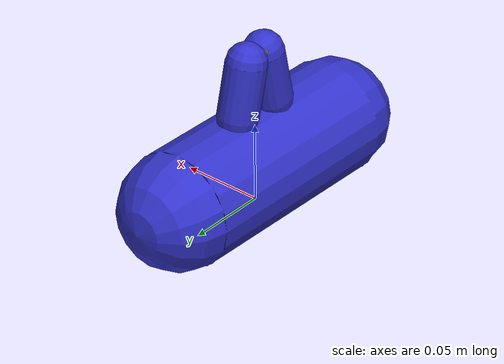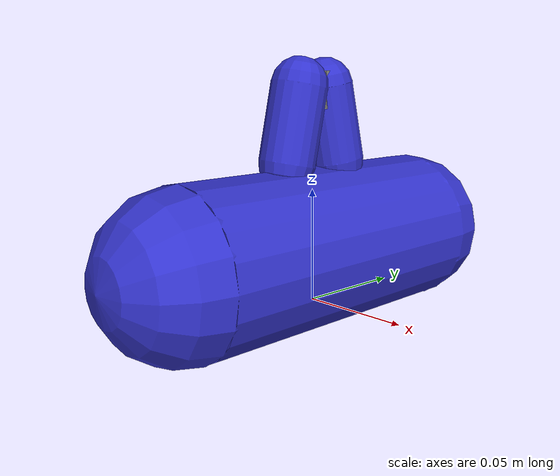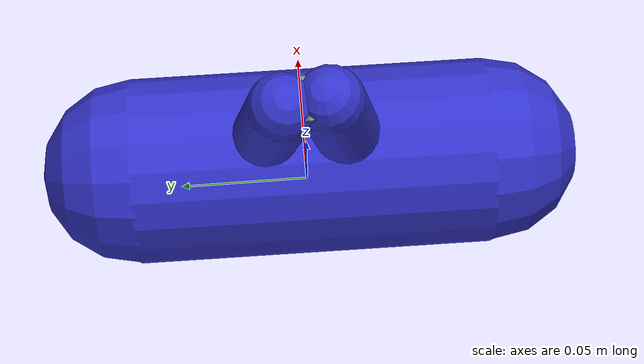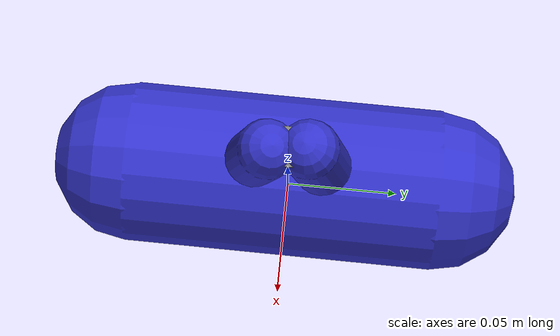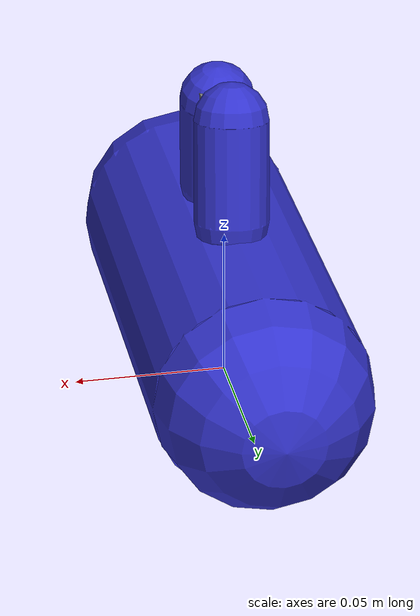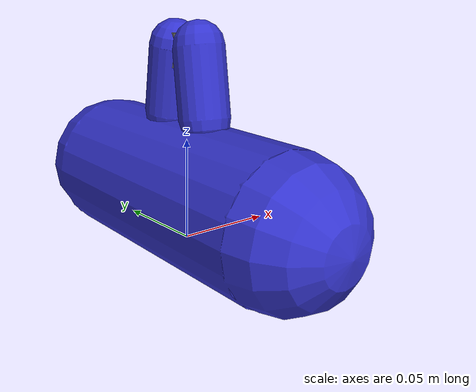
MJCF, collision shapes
<mujoco model="panda_hand">
  <asset>
    <mesh name="hand" file="meshes/panda_gripper/hand.stl"/>
    <mesh name="hand_vis" file="meshes/panda_gripper/hand_vis.stl"/>
    <mesh name="finger" file="meshes/panda_gripper/finger.stl"/>
    <mesh name="finger_vis" file="meshes/panda_gripper/finger_vis.stl"/>
    <mesh name="finger_vis2" file="meshes/panda_gripper/finger_longer.stl"/>
  </asset>
  <actuator>
    <position ctrllimited="true" ctrlrange="0.0 0.04" joint="finger_joint1" kp="1000" name="gripper_finger_joint1" forcelimited="true" forcerange="-20 20"/>
    <position ctrllimited="true" ctrlrange="-0.04 0.0" joint="finger_joint2" kp="1000" name="gripper_finger_joint2" forcelimited="true" forcerange="-20 20"/>
  </actuator>
  <worldbody>
    <body name="right_gripper" pos="0 0 0" quat="0.707107 0 0 -0.707107">
      <site name="ft_frame" pos="0 0 0" size="0.01 0.01 0.01" rgba="1 0 0 0" type="sphere" group="1"/>
      <inertial pos="0 0 0.17" quat="0.707107 0.707107 0 0" mass="0.3" diaginertia="0.09 0.07 0.05"/>
      <geom pos="0 0 0." quat="0.707107 0 0 0.707107" type="mesh" contype="0" conaffinity="0" group="1" mesh="hand_vis" name="hand_visual" rgba="1 1 1 1"/>
      <geom pos="0.001689 -0.000006 0.024720" quat="0.503588 -0.498641 -0.494121 0.503588" type="capsule" group="0" name="hand_collision" size="0.035412 0.067152" rgba="0.2 0.2 0.8 0.5"/>
      <body name="eef" pos="0 0 0.097" quat="1 0 0 0">
        <site name="grip_site" pos="0 0 0" size="0.01 0.01 0.01" rgba="1 0 0 0.0" type="sphere" group="1"/>
        <site name="ee_x" pos="0.1 0 0" size="0.005 .1" quat="0.707105  0 0.707108 0 " rgba="1 0 0 0" type="cylinder" group="1"/>
        <site name="ee_y" pos="0 0.1 0" size="0.005 .1" quat="0.707105 0.707108 0 0" rgba="0 1 0 0" type="cylinder" group="1"/>
        <site name="ee_z" pos="0 0 0.1" size="0.005 .1" quat="1 0 0 0" rgba="0 0 1 0" type="cylinder" group="1"/>
        <site name="grip_site_cylinder" pos="0 0 0" size="0.005 10" rgba="0 1 0 0.0" type="cylinder" group="1"/>
      </body>
      <body name="leftfinger" pos="0 0 0.0524" quat="0.707107 0 0 0.707107">
        <inertial pos="0 0 0.05" mass="0.1" diaginertia="0.01 0.01 0.005"/>
        <joint name="finger_joint1" pos="0 0 0" axis="0 1 0" type="slide" limited="true" range="0.0 0.04" damping="100" armature="1.0" frictionloss="1.0"/>
        <geom type="mesh" contype="0" conaffinity="0" group="1" mesh="finger_vis" name="finger1_visual" rgba="0.499 0.499 0.499 1"/>
        <geom type="capsule" group="0" conaffinity="1" contype="0" solref="0.02 1" friction="1 0.005 0.0001" condim="4" name="finger1_collision" pos="-0.000111 0.011385 0.026510" quat="0.995454 0.093511 -0.018071 0.000000" size="0.012241 0.016809" rgba="0.2 0.2 0.8 0.5"/>
        <body name="finger_joint1_tip" pos="0 0.0085 0.056">
          <inertial pos="0 0 0" quat="0 0 0 1" mass="0.01" diaginertia="0.01 0.01 0.01"/>
          <geom size="0.008 0.004 0.008" pos="0 -0.005 -0.015" quat="0 0 0 1" type="box" group="0" solref="0.01 0.5" friction="2 0.05 0.0001" conaffinity="1" contype="1" name="finger1_pad_collision"/>
        </body>
      </body>
      <body name="rightfinger" pos="0 0 0.0524" quat="0.707107 0 0 0.707107">
        <inertial pos="0 0 0.05" mass="0.1" diaginertia="0.01 0.01 0.005"/>
        <joint name="finger_joint2" pos="0 0 0" axis="0 1 0" type="slide" limited="true" range="-0.04 0.0" damping="100" armature="1.0" frictionloss="1.0"/>
        <geom quat="0 0 0 1" type="mesh" contype="0" conaffinity="0" group="1" mesh="finger_vis" name="finger2_visual" rgba="0.499 0.499 0.499 1"/>
        <geom quat="0.000000 0.018071 0.093511 0.995454" type="capsule" group="0" conaffinity="1" contype="0" solref="0.02 1" friction="1 0.005 0.0001" condim="4" name="finger2_collision" pos="0.000111 -0.011385 0.026510" size="0.012241 0.016809" rgba="0.2 0.2 0.8 0.5"/>
        <body name="finger_joint2_tip" pos="0 -0.0085 0.056">
          <inertial pos="0 0 0" quat="0 0 0 1" mass="0.01" diaginertia="0.01 0.01 0.01"/>
          <geom size="0.008 0.004 0.008" pos="0 0.005 -0.015" quat="0 0 0 1" type="box" group="0" solref="0.01 0.5" friction="2 0.05 0.0001" conaffinity="1" contype="1" name="finger2_pad_collision"/>
        </body>
      </body>
    </body>
  </worldbody>
  <sensor>
    <force name="force_ee" site="ft_frame"/>
    <torque name="torque_ee" site="ft_frame"/>
  </sensor>
</mujoco>
